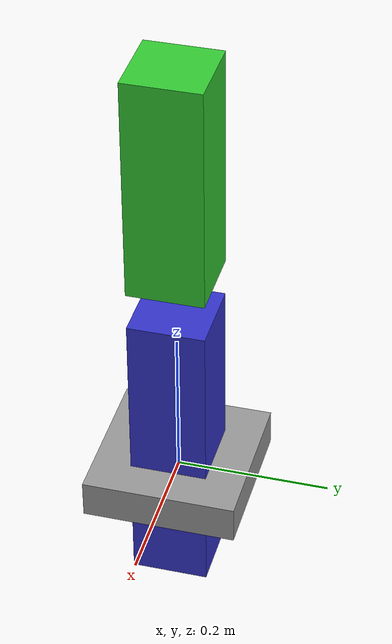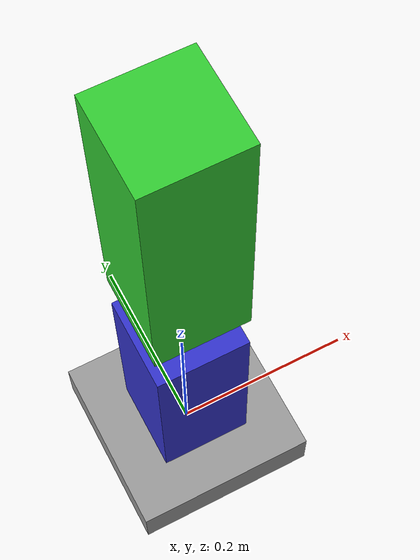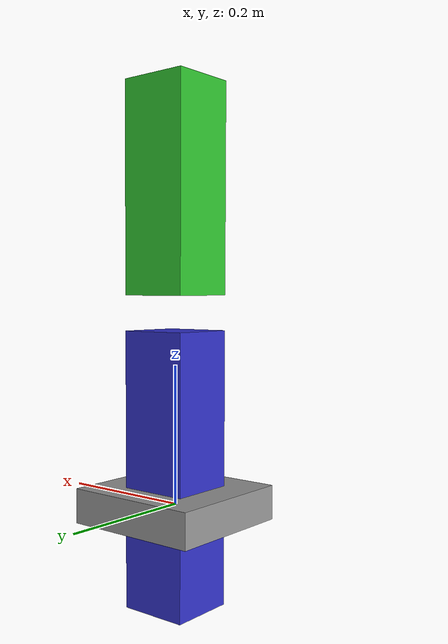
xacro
<?xml version="1.0"?>
<robot xmlns:xacro="http://www.ros.org/wiki/xacro" name="fake_robot">

  <!-- 可通过 launch 设置的参数 -->
  <xacro:arg name="prefix" default=""/>
  <xacro:arg name="use_mock_hardware" default="false"/>
  <xacro:arg name="mock_sensor_commands" default="false"/>
  <xacro:arg name="slowdown" default="50.0"/>

  <!-- Links -->
  <link name="base_link">
    <visual>
      <geometry>
        <box size="0.2 0.2 0.05"/>
      </geometry>
      <material name="gray">
        <color rgba="0.6 0.6 0.6 1.0"/>
      </material>
    </visual>
  </link>

  <link name="link1">
    <visual>
      <geometry>
        <box size="0.1 0.1 0.4"/>
      </geometry>
      <material name="blue">
        <color rgba="0.2 0.2 0.8 1.0"/>
      </material>
    </visual>
  </link>

  <link name="link2">
    <visual>
      <geometry>
        <box size="0.1 0.1 0.3"/>
      </geometry>
      <material name="green">
        <color rgba="0.2 0.8 0.2 1.0"/>
      </material>
    </visual>
  </link>

  <!-- Joints -->
  <joint name="joint1" type="revolute">
    <parent link="base_link"/>
    <child link="link1"/>
    <origin xyz="0 0 0.05" rpy="0 0 0"/>
    <axis xyz="0 0 1"/>
    <limit lower="-3.14" upper="3.14" effort="10" velocity="1.0"/>
  </joint>

  <joint name="joint2" type="revolute">
    <parent link="link1"/>
    <child link="link2"/>
    <origin xyz="0 0 0.4" rpy="0 0 0"/>
    <axis xyz="0 1 0"/>
    <limit lower="-1.57" upper="1.57" effort="10" velocity="1.0"/>
  </joint>

  <!-- ros2_control -->
  <ros2_control name="fake_hw_interface::FakeSystem" type="system">
    <hardware>
      <!-- 与 plugin xml 中 class 完全一致 -->
      <plugin>fake_hw_interface/FakeSystem</plugin>
      <param name="use_mock_hardware" value="$(arg use_mock_hardware)"/>
      <param name="mock_sensor_commands" value="$(arg mock_sensor_commands)"/>
      <param name="slowdown" value="$(arg slowdown)"/>
    </hardware>

  <joint name="joint1">
    <command_interface name="position"/>
    <state_interface name="position"/>
    <state_interface name="velocity"/>
  </joint>

  <joint name="joint2">
    <command_interface name="position"/>
    <state_interface name="position"/>
    <state_interface name="velocity"/>
  </joint>

  <joint name="joint3">
    <command_interface name="position"/>
    <state_interface name="position"/>
    <state_interface name="velocity"/>
  </joint>

  </ros2_control>

  <ros2_control name="OrinPerceptionSystem" type="system">
  <hardware>
    <plugin>perception_hardware/PerceptionSystem</plugin>
  </hardware>

  <sensor name="camera_front">
    <param name="device_type">mock_camera</param>
    <param name="video_device">/dev/video0</param>
    <param name="image_width">640</param>
    <param name="image_height">480</param>
    <param name="framerate">30.0</param>
    <param name="pixel_format">mjpeg</param>
    <param name="camera_frame_id">camera_link</param>
    <param name="output_mode">screen</param>
    <param name="fx">500.0</param><param name="fy">500.0</param>
    <param name="cx">320.0</param><param name="cy">240.0</param>

    <state_interface name="data_ptr"/>
  </sensor>

  <sensor name="t265_front">
    <param name="device_type">t265_camera</param>
    <param name="serial_no">224622110353</param>
    <param name="usb_port_id">4-1</param>
    <param name="wait_for_device_timeout">-1.0</param>
    <param name="reconnect_timeout">6.0</param>
    <param name="initial_reset">true</param>

    <state_interface name="data_ptr"/>
  </sensor>

</ros2_control>

</robot>
